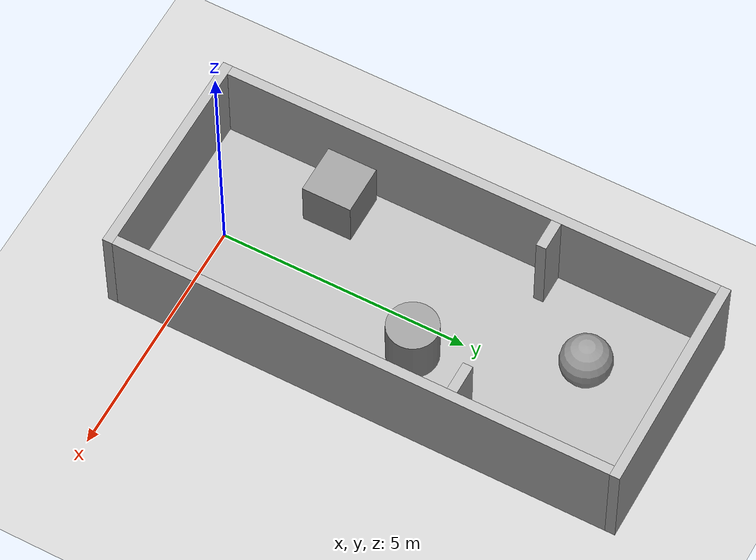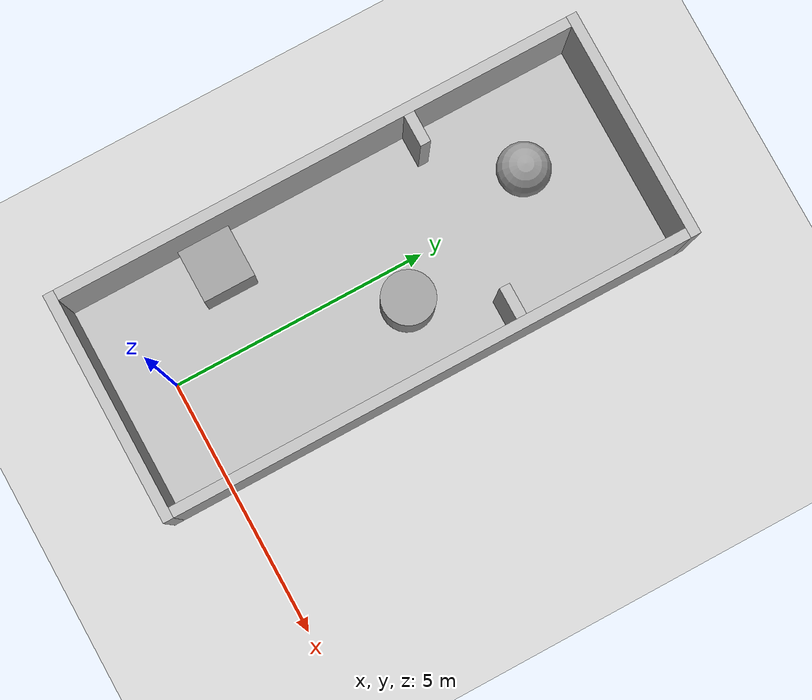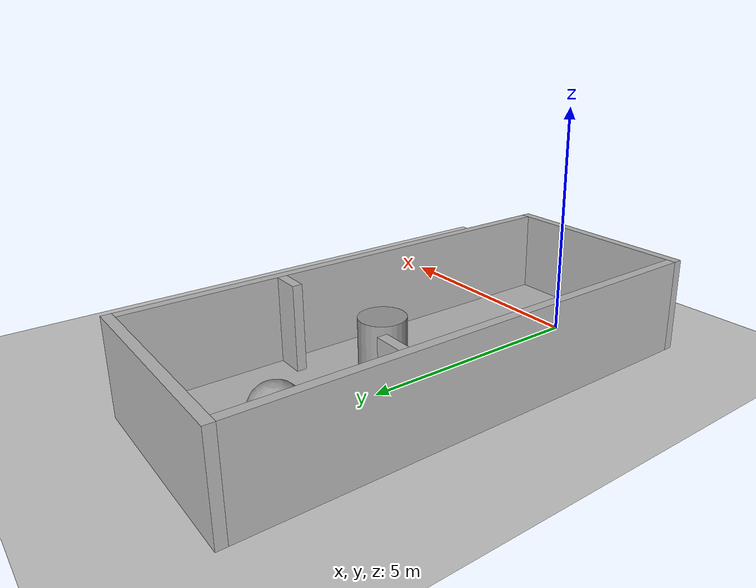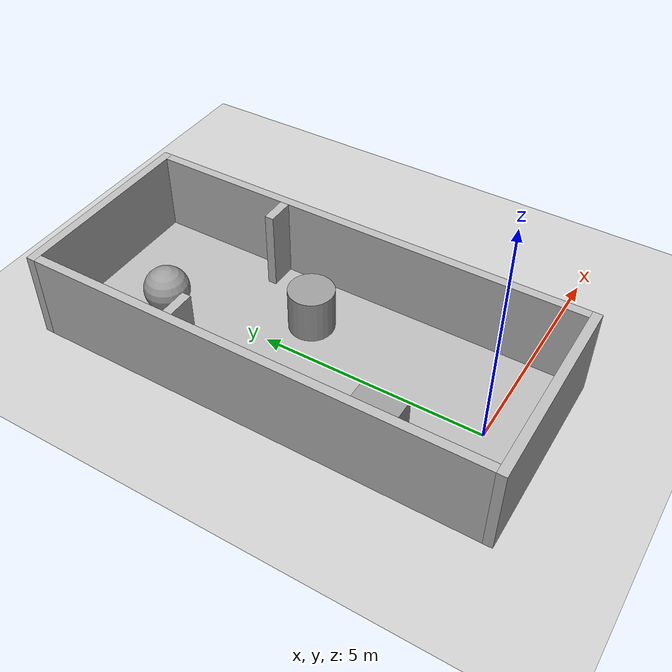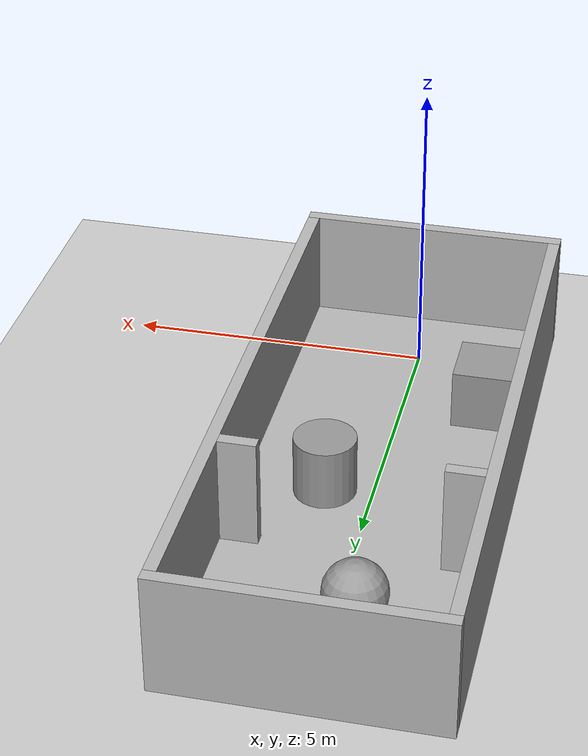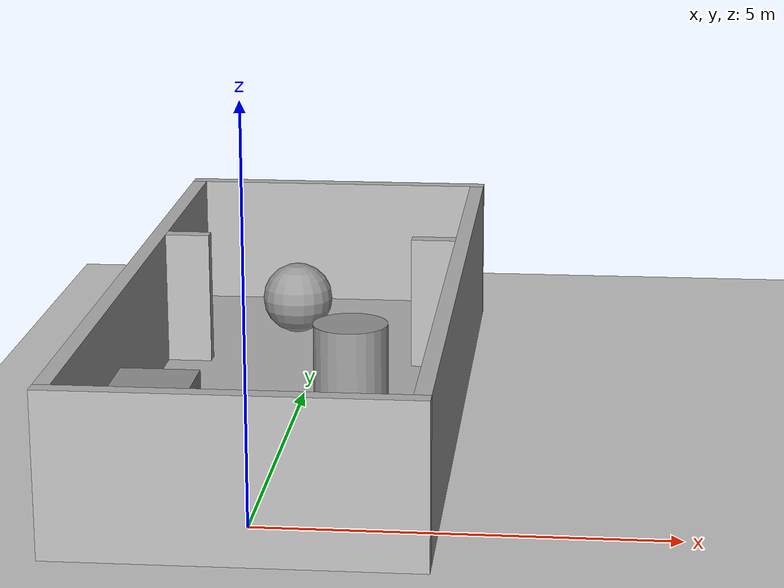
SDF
<sdf version="1.6">
 <world name="default">
  <light name="sun" type="directional">
   <pose>0 0 10 0 -0 0</pose>
   <diffuse>0.8 0.8 0.8 1</diffuse>
   <specular>0.2 0.2 0.2 1</specular>
   <attenuation>
    <range>1000</range>
    <constant>0.9</constant>
    <linear>0.01</linear>
    <quadratic>0.001</quadratic>
   </attenuation>
   <direction>-0.5 0.1 -0.9</direction>
  </light>
  <model name="ground_plane">
   <static>1</static>
   <link name="link">
    <collision name="collision">
     <geometry><plane><normal>0 0 1</normal><size>100 100</size></plane></geometry>
     <surface>
      <contact><collide_bitmask>65535</collide_bitmask></contact>
      <friction><ode><mu>100</mu><mu2>50</mu2></ode></friction>
     </surface>
    </collision>
    <visual name="visual">
     <cast_shadows>0</cast_shadows>
     <geometry><plane><normal>0 0 1</normal><size>100 100</size></plane></geometry>
     <material>
      <script><uri>file://media/materials/scripts/gazebo.material</uri><name>Gazebo/Grey</name></script>
     </material>
    </visual>
   </link>
  </model>
  <gravity>0 0 -9.8</gravity>
  <magnetic_field>6e-06 2.3e-05 -4.2e-05</magnetic_field>
  <atmosphere type="adiabatic"/>
  <physics name="default_physics" default="0" type="ode">
   <max_step_size>0.001</max_step_size>
   <real_time_factor>1</real_time_factor>
   <real_time_update_rate>1000</real_time_update_rate>
  </physics>
  <scene><ambient>0.4 0.4 0.4 1</ambient><background>0.7 0.7 0.7 1</background><shadows>1</shadows></scene>
  <spherical_coordinates>
   <surface_model>EARTH_WGS84</surface_model>
   <latitude_deg>0</latitude_deg>
   <longitude_deg>0</longitude_deg>
   <elevation>0</elevation>
   <heading_deg>0</heading_deg>
  </spherical_coordinates>
  <model name="Dynamic Env Test1">
   <static>1</static>
   <link name="link1">
    <pose>0 4 0.1 0 -0 0</pose>
    <collision name="collision"><geometry><box><size>4 10 0.2</size></box></geometry></collision>
    <visual name="visual">
     <cast_shadows>0</cast_shadows>
     <geometry><box><size>4 10 0.2</size></box></geometry>
    </visual>
   </link>
   <link name="link2">
    <pose>2.1 4 1 0 -0 0</pose>
    <collision name="collision"><geometry><box><size>0.2 10 2</size></box></geometry></collision>
    <visual name="visual">
     <cast_shadows>0</cast_shadows>
     <geometry><box><size>0.2 10 2</size></box></geometry>
    </visual>
   </link>
   <link name="link3">
    <pose>-2.1 4 1 0 -0 0</pose>
    <collision name="collision"><geometry><box><size>0.2 10 2</size></box></geometry></collision>
    <visual name="visual">
     <cast_shadows>0</cast_shadows>
     <geometry><box><size>0.2 10 2</size></box></geometry>
    </visual>
   </link>
   <link name="link4">
    <pose>1.7 5.8 1 0 -0 0</pose>
    <collision name="collision"><geometry><box><size>0.6 0.2 2</size></box></geometry></collision>
    <visual name="visual">
     <cast_shadows>0</cast_shadows>
     <geometry><box><size>0.6 0.2 2</size></box></geometry>
    </visual>
   </link>
   <link name="link5">
    <pose>-1.7 5.8 1 0 -0 0</pose>
    <collision name="collision"><geometry><box><size>0.6 0.2 2</size></box></geometry></collision>
    <visual name="visual">
     <cast_shadows>0</cast_shadows>
     <geometry><box><size>0.6 0.2 2</size></box></geometry>
    </visual>
   </link>
   <link name="link6">
    <pose>0 -1.1 1 0 -0 0</pose>
    <collision name="collision"><geometry><box><size>4.4 0.2 2</size></box></geometry></collision>
    <visual name="visual">
     <cast_shadows>0</cast_shadows>
     <geometry><box><size>4.4 0.2 2</size></box></geometry>
    </visual>
   </link>
   <link name="link7">
    <pose>0 9.1 1 0 -0 0</pose>
    <collision name="collision"><geometry><box><size>4.4 0.2 2</size></box></geometry></collision>
    <visual name="visual">
     <cast_shadows>0</cast_shadows>
     <geometry><box><size>4.4 0.2 2</size></box></geometry>
    </visual>
   </link>
  </model>
  <model name="unit_cylinder">
   <pose>0.71241 4.32815 0.69999 0 -0 7e-06</pose>
   <link name="link">
    <inertial>
     <mass>1</mass>
     <inertia><ixx>0.145833</ixx><ixy>0</ixy><ixz>0</ixz><iyy>0.145833</iyy><iyz>0</iyz><izz>0.125</izz></inertia>
    </inertial>
    <collision name="collision">
     <geometry><cylinder><radius>0.5</radius><length>1</length></cylinder></geometry>
    </collision>
    <visual name="visual">
     <geometry><cylinder><radius>0.5</radius><length>1</length></cylinder></geometry>
     <material>
      <script><name>Gazebo/Grey</name><uri>file://media/materials/scripts/gazebo.material</uri></script>
     </material>
    </visual>
   </link>
  </model>
  <model name="unit_sphere">
   <pose>-0.387926 7.27778 0.7 -0.007055 -0.000871 6e-06</pose>
   <link name="link">
    <inertial>
     <mass>1</mass>
     <inertia><ixx>0.1</ixx><ixy>0</ixy><ixz>0</ixz><iyy>0.1</iyy><iyz>0</iyz><izz>0.1</izz></inertia>
    </inertial>
    <collision name="collision"><geometry><sphere><radius>0.5</radius></sphere></geometry></collision>
    <visual name="visual">
     <geometry><sphere><radius>0.5</radius></sphere></geometry>
     <material>
      <script><name>Gazebo/Grey</name><uri>file://media/materials/scripts/gazebo.material</uri></script>
     </material>
    </visual>
   </link>
  </model>
  <model name="unit_box">
   <pose>-1.4098 1.65945 0.7 -0 -0 -0</pose>
   <link name="link">
    <inertial>
     <mass>1</mass>
     <inertia>
      <ixx>0.166667</ixx>
      <ixy>0</ixy>
      <ixz>0</ixz>
      <iyy>0.166667</iyy>
      <iyz>0</iyz>
      <izz>0.166667</izz>
     </inertia>
    </inertial>
    <collision name="collision"><geometry><box><size>1 1 1</size></box></geometry></collision>
    <visual name="visual">
     <geometry><box><size>1 1 1</size></box></geometry>
     <material>
      <script><name>Gazebo/Grey</name><uri>file://media/materials/scripts/gazebo.material</uri></script>
     </material>
    </visual>
   </link>
  </model>
 </world>
</sdf>
